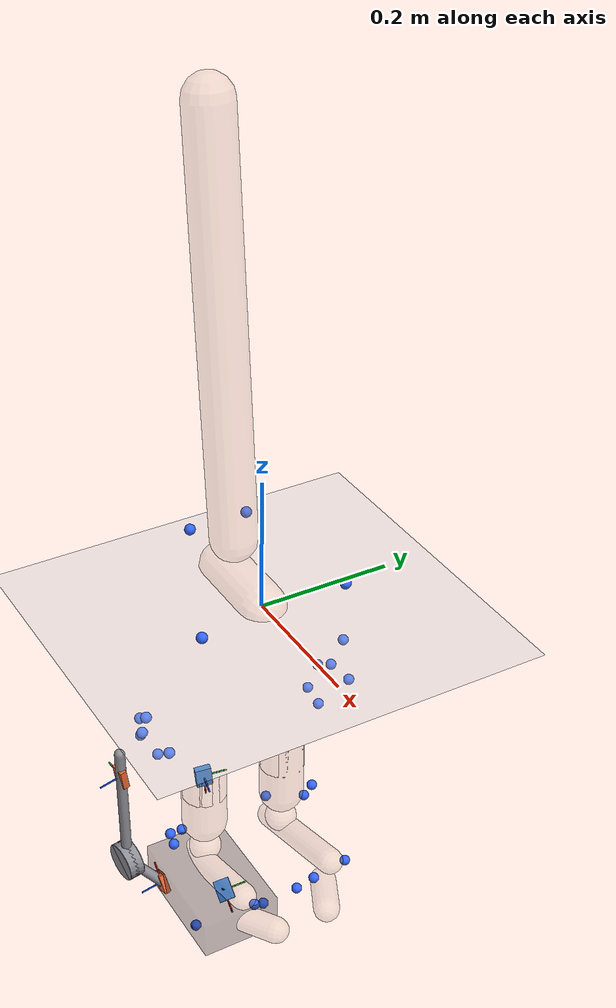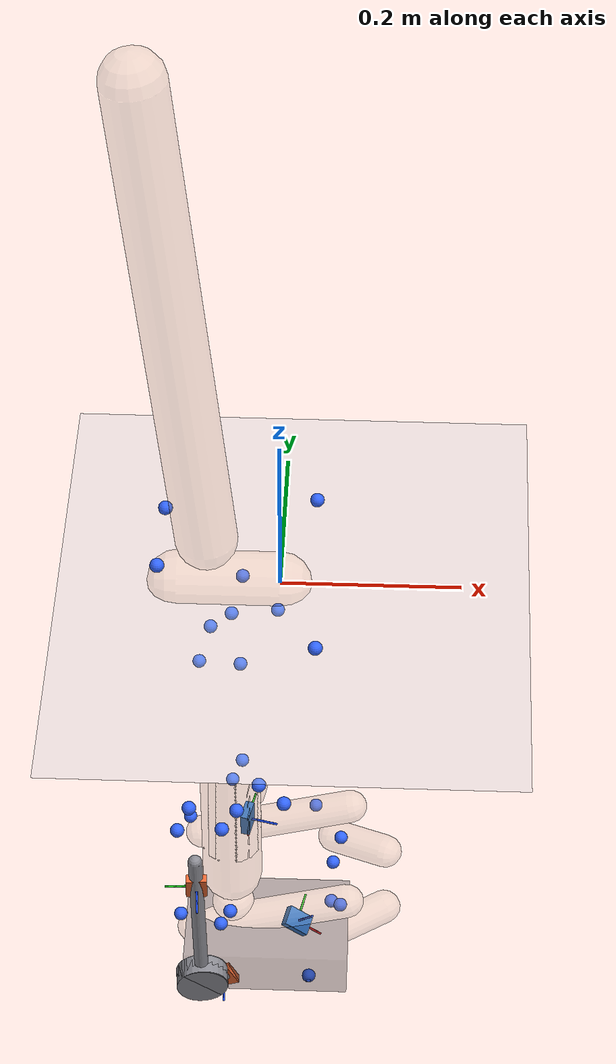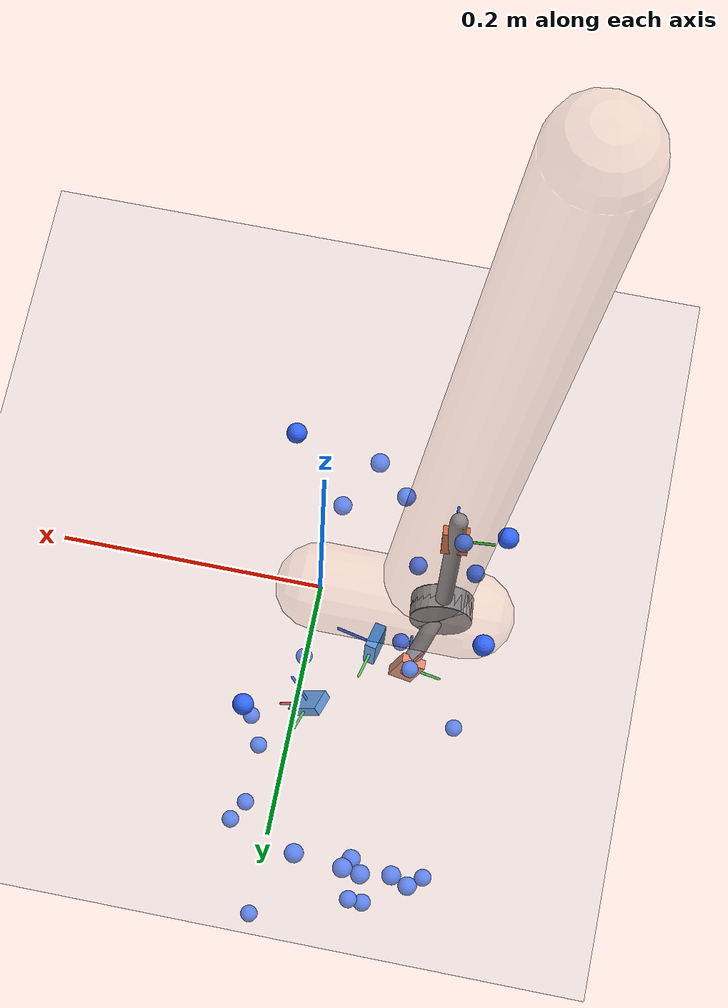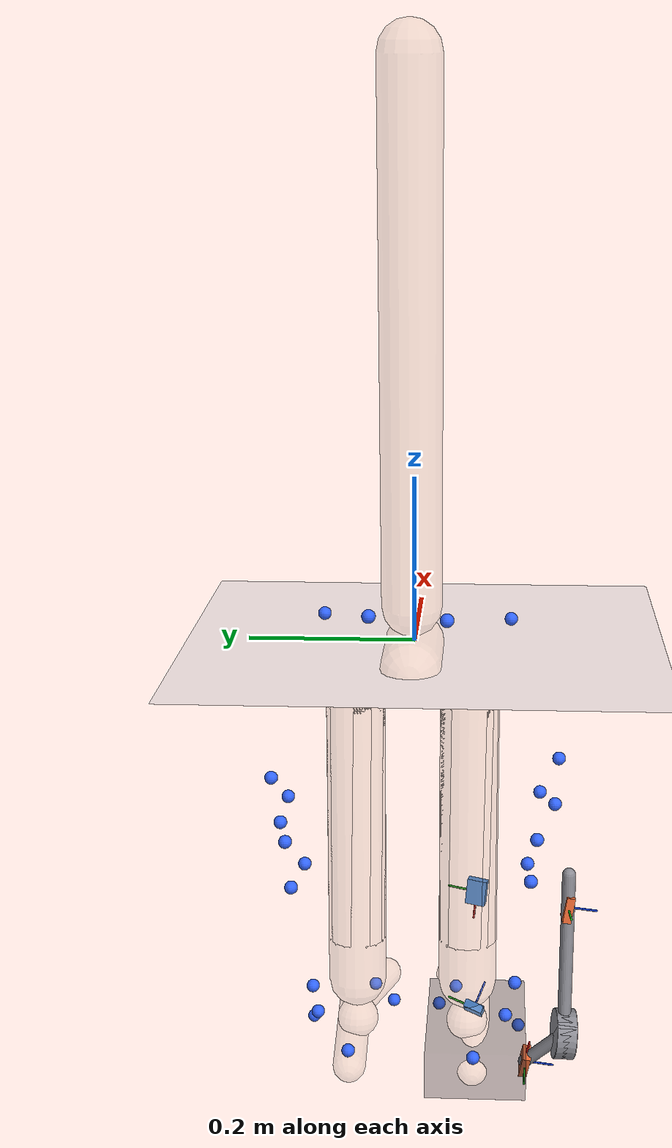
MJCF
<mujoco model="AB25">
  <compiler angle="radian" autolimits="true"/>
  <option timestep="0.005" gravity="0 0 -9.81"><flag contact="disable"/></option>
  <visual><global offwidth="1600" offheight="1200"/>
    <headlight ambient="0.55 0.55 0.55" diffuse="0.6 0.6 0.6"/></visual>
  <default><joint limited="false" damping="0"/><geom contype="0" conaffinity="0"/></default>
  <asset>
    <texture name="grid" type="2d" builtin="checker" rgb1="0.75 0.77 0.8" rgb2="0.85 0.87 0.9" width="512" height="512"/>
    <material name="grid" texture="grid" texrepeat="2 2" texuniform="true"/>
    <material name="skin" rgba="0.85 0.72 0.62 0.28"/>
  </asset>
  <worldbody>
    <light pos="0 0 4" dir="0 0 -1"/>
    <geom name="floor" type="plane" size="0 0 0.05" material="grid"/>
    <body name="pelvis" pos="0 0 0" quat="1 0 0 0">
      <joint name="pelvis_tx" type="slide" axis="1 0 0"/>
      <joint name="pelvis_ty" type="slide" axis="0 0 1"/>
      <joint name="pelvis_tz" type="slide" axis="0 -1 0"/>
      <joint name="pelvis_tilt" type="hinge" axis="0 -1 0"/>
      <joint name="pelvis_list" type="hinge" axis="1 0 0"/>
      <joint name="pelvis_rotation" type="hinge" axis="0 0 1"/>
      <inertial pos="-0.057018595 0 0" mass="8.41204" diaginertia="0.084120373 0.084120373 0.084120373"/>
      <geom type="capsule" fromto="0 0 0 -0.11403719 0 0" size="0.035" material="skin" mass="0"/>
      <site name="m_R_ASIS" pos="0.042614853 -0.11565063 0.016815682" size="0.008" rgba="0.2 0.4 1 1" group="2"/>
      <site name="m_L_ASIS" pos="0.036537914 0.11166799 0.022542233" size="0.008" rgba="0.2 0.4 1 1" group="2"/>
      <site name="m_L_PSIS" pos="-0.12928248 0.046405294 0.066169564" size="0.008" rgba="0.2 0.4 1 1" group="2"/>
      <site name="m_R_PSIS" pos="-0.13249955 -0.04200807 0.063196365" size="0.008" rgba="0.2 0.4 1 1" group="2"/>
      <body name="femur_r" pos="-0.057018595 -0.067341622 -0.053308757" quat="1 0 0 0">
        <joint name="hip_flexion_r" type="hinge" axis="0 -1 0"/>
        <joint name="hip_adduction_r" type="hinge" axis="1 0 0"/>
        <joint name="hip_rotation_r" type="hinge" axis="0 0 1"/>
        <inertial pos="0 0 -0.15331046" mass="6.64377" diaginertia="0.066437737 0.066437737 0.066437737"/>
        <geom type="capsule" fromto="0 0 0 0 0 -0.30662092" size="0.035" material="skin" mass="0"/>
        <site name="m_R_Thigh_Upper" pos="0.039877192 -0.1078605 -0.087309827" size="0.008" rgba="0.2 0.4 1 1" group="2"/>
        <site name="m_R_Thigh_Front" pos="0.066219019 -0.086449809 -0.14124153" size="0.008" rgba="0.2 0.4 1 1" group="2"/>
        <site name="m_R_Thigh_Rear" pos="0.014210524 -0.10327095 -0.13604444" size="0.008" rgba="0.2 0.4 1 1" group="2"/>
        <site name="m_R_Knee_Lat" pos="0.00058716678 -0.058574828 -0.36610361" size="0.008" rgba="0.2 0.4 1 1" group="2"/>
        <body name="tibia_r" pos="0 0 0" quat="1 0 0 0">
<geom name="gt_shank_axis_x" type="capsule" size="0.0012" fromto="0.02000 -0.01050 -0.25450 0.02027 -0.00704 -0.28933" rgba="1 0.1 0.1 1" contype="0" conaffinity="0" mass="0"/>
<geom name="gt_shank_axis_y" type="capsule" size="0.0012" fromto="0.02000 -0.01050 -0.25450 0.02773 0.02346 -0.25107" rgba="0.1 0.8 0.1 1" contype="0" conaffinity="0" mass="0"/>
<geom name="gt_shank_axis_z" type="capsule" size="0.0012" fromto="0.02000 -0.01050 -0.25450 0.05414 -0.01822 -0.25500" rgba="0.1 0.3 1 1" contype="0" conaffinity="0" mass="0"/>
<geom name="exo_shank_axis_x" type="capsule" size="0.0012" fromto="-0.03231 -0.11966 -0.24845 -0.03167 -0.12506 -0.21387" rgba="1 0.1 0.1 1" contype="0" conaffinity="0" mass="0"/>
<geom name="exo_shank_axis_y" type="capsule" size="0.0012" fromto="-0.03231 -0.11966 -0.24845 -0.06719 -0.12256 -0.24825" rgba="0.1 0.8 0.1 1" contype="0" conaffinity="0" mass="0"/>
<geom name="exo_shank_axis_z" type="capsule" size="0.0012" fromto="-0.03231 -0.11966 -0.24845 -0.02949 -0.15412 -0.25388" rgba="0.1 0.3 1 1" contype="0" conaffinity="0" mass="0"/>
<geom name="encoder_shank" type="cylinder" size="0.03 0.012" fromto="-0.02861 -0.13030 -0.41795 -0.03119 -0.10650 -0.41625" rgba="0.55 0.55 0.58 1" contype="0" conaffinity="0" mass="0"/>
<geom name="strut_shank" type="capsule" size="0.008" fromto="-0.02990 -0.11840 -0.41710 -0.03292 -0.11998 -0.20628" rgba="0.55 0.55 0.58 1" contype="0" conaffinity="0" mass="0"/>
          <joint name="knee_r_translation1" type="slide" axis="1 0 0"/>
          <joint name="knee_r_translation2" type="slide" axis="0 0 1"/>
          <joint name="knee_angle_r" type="hinge" axis="0 -1 0"/>
          <inertial pos="0 0 -0.18110796" mass="2.64818" diaginertia="0.02648181 0.02648181 0.02648181"/>
          <geom type="capsule" fromto="0 0 0 0 0 -0.36221593" size="0.035" material="skin" mass="0"/>
          <site name="m_R_Shank_Upper" pos="-0.040971337 -0.081139637 -0.15953262" size="0.008" rgba="0.2 0.4 1 1" group="2"/>
          <site name="m_R_Shank_Front" pos="-0.0054659316 -0.071329649 -0.20556957" size="0.008" rgba="0.2 0.4 1 1" group="2"/>
          <site name="m_R_Shank_Rear" pos="-0.056039005 -0.074445088 -0.20608106" size="0.008" rgba="0.2 0.4 1 1" group="2"/>
          <site name="m_R_Ankle_Lat" pos="-0.011788496 -0.047444483 -0.4034879" size="0.008" rgba="0.2 0.4 1 1" group="2"/>
          <site name="gt_shank_imu" type="box" size="0.016 0.012 0.005" pos="0.02 -0.0105 -0.2545" quat="0.70067015 0.11369956 0.70301913 -0.043564434" rgba="0.16 0.47 0.84 1" group="1"/>
          <site name="exo_shank_imu" type="box" size="0.016 0.012 0.005" pos="-0.032314 -0.119664 -0.248446" quat="0.44174391 0.56037788 -0.51337998 0.47673886" rgba="0.92 0.41 0.20 1" group="1"/>
          <body name="talus_r" pos="0 0 -0.41712065" quat="1 0 0 0">
            <joint name="ankle_angle_r" type="hinge" axis="-0.10501355 -0.97912632 -0.17402245"/>
            <inertial pos="0 0 0" mass="0.0714277" diaginertia="0.00071427675 0.00071427675 0.00071427675"/>
            <geom type="sphere" size="0.025" material="skin" mass="0"/>
            <body name="calcn_r" pos="-0.047309242 -0.0076827803 -0.040693514" quat="1 0 0 0">
<geom name="gt_foot_axis_x" type="capsule" size="0.0012" fromto="0.12410 -0.00050 0.01530 0.15207 -0.00176 -0.00570" rgba="1 0.1 0.1 1" contype="0" conaffinity="0" mass="0"/>
<geom name="gt_foot_axis_y" type="capsule" size="0.0012" fromto="0.12410 -0.00050 0.01530 0.13305 0.03183 0.02528" rgba="0.1 0.8 0.1 1" contype="0" conaffinity="0" mass="0"/>
<geom name="gt_foot_axis_z" type="capsule" size="0.0012" fromto="0.12410 -0.00050 0.01530 0.14314 -0.01385 0.04146" rgba="0.1 0.3 1 1" contype="0" conaffinity="0" mass="0"/>
<geom name="exo_foot_axis_x" type="capsule" size="0.0012" fromto="0.04000 -0.06448 -0.01043 0.02738 -0.06983 0.02178" rgba="1 0.1 0.1 1" contype="0" conaffinity="0" mass="0"/>
<geom name="exo_foot_axis_y" type="capsule" size="0.0012" fromto="0.04000 -0.06448 -0.01043 0.00737 -0.06369 -0.02308" rgba="0.1 0.8 0.1 1" contype="0" conaffinity="0" mass="0"/>
<geom name="exo_foot_axis_z" type="capsule" size="0.0012" fromto="0.04000 -0.06448 -0.01043 0.04120 -0.09906 -0.01570" rgba="0.1 0.3 1 1" contype="0" conaffinity="0" mass="0"/>
<geom name="encoder_foot" type="cylinder" size="0.03 0.012" fromto="0.01843 -0.12260 0.03958 0.01637 -0.09880 0.04182" rgba="0.55 0.55 0.58 1" contype="0" conaffinity="0" mass="0"/>
<geom name="strut_foot" type="capsule" size="0.008" fromto="0.01740 -0.11070 0.04070 0.04000 -0.06448 -0.01043" rgba="0.55 0.55 0.58 1" contype="0" conaffinity="0" mass="0"/>
<geom name="shoe" type="box" pos="0.08835 -0.00363 -0.00635" size="0.09684 0.06154 0.03000" rgba="0.15 0.15 0.18 0.35" contype="0" conaffinity="0" mass="0"/>
              <joint name="subtalar_angle_r" type="hinge" axis="0.78717961 0.12094949 0.60474746"/>
              <inertial pos="0.091772423 0 0.027531727" mass="0.892846" diaginertia="0.0089284594 0.0089284594 0.0089284594"/>
              <geom type="capsule" fromto="0 0 0 0.18354485 0 0.055063454" size="0.02" material="skin" mass="0"/>
              <site name="m_R_Heel" pos="-0.015491373 -0.0010437046 0.0235783" size="0.008" rgba="0.2 0.4 1 1" group="2"/>
              <site name="m_R_Toe_Lat" pos="0.14030319 -0.057755739 -0.016350483" size="0.008" rgba="0.2 0.4 1 1" group="2"/>
              <site name="m_R_Toe_Med" pos="0.16368066 0.045314489 -0.00038220591" size="0.008" rgba="0.2 0.4 1 1" group="2"/>
              <site name="m_R_Toe_Tip" pos="0.17519241 0.023792102 0.018808556" size="0.008" rgba="0.2 0.4 1 1" group="2"/>
              <site name="gt_foot_imu" type="box" size="0.016 0.012 0.005" pos="0.1241 -0.0005 0.0153" quat="0.9314395 0.17891581 0.30704976 -0.078294524" rgba="0.16 0.47 0.84 1" group="1"/>
              <site name="exo_foot_imu" type="box" size="0.016 0.012 0.005" pos="0.039996 -0.06448 -0.010428" quat="-0.35759076 -0.43800523 0.61925745 -0.54479398" rgba="0.92 0.41 0.20 1" group="1"/>
              <body name="toes_r" pos="0.16408909 -0.00099114217 -0.0018354485" quat="1 0 0 0">
                <joint name="mtp_angle_r" type="hinge" axis="-0.5809544 -0.81393611 0"/>
                <inertial pos="0.031753258 0.016060174 0.0055063454" mass="0.154712" diaginertia="0.0015471234 0.0015471234 0.0015471234"/>
                <geom type="capsule" fromto="0 0 0 0.063506517 0.032120348 0.011012691" size="0.02" material="skin" mass="0"/>
              </body>
            </body>
          </body>
        </body>
      </body>
      <body name="femur_l" pos="-0.057018595 0.067341622 -0.053308757" quat="1 0 0 0">
        <joint name="hip_flexion_l" type="hinge" axis="0 -1 0"/>
        <joint name="hip_adduction_l" type="hinge" axis="-1 0 0"/>
        <joint name="hip_rotation_l" type="hinge" axis="0 0 -1"/>
        <inertial pos="0 0 -0.15331046" mass="6.64377" diaginertia="0.066437737 0.066437737 0.066437737"/>
        <geom type="capsule" fromto="0 0 0 0 0 -0.30662092" size="0.035" material="skin" mass="0"/>
        <site name="m_L_Thigh_Upper" pos="0.0031947813 0.10258205 -0.10478482" size="0.008" rgba="0.2 0.4 1 1" group="2"/>
        <site name="m_L_Thigh_Front" pos="0.045402399 0.087521848 -0.14492707" size="0.008" rgba="0.2 0.4 1 1" group="2"/>
        <site name="m_L_Thigh_Rear" pos="-0.010253606 0.090835914 -0.1561543" size="0.008" rgba="0.2 0.4 1 1" group="2"/>
        <site name="m_L_Knee_Lat" pos="0.00121921 0.055426436 -0.37692024" size="0.008" rgba="0.2 0.4 1 1" group="2"/>
        <body name="tibia_l" pos="0 0 0" quat="1 0 0 0">
          <joint name="knee_l_translation1" type="slide" axis="1 0 0"/>
          <joint name="knee_l_translation2" type="slide" axis="0 0 1"/>
          <joint name="knee_angle_l" type="hinge" axis="0 -1 0"/>
          <inertial pos="0 0 -0.18110796" mass="2.64818" diaginertia="0.02648181 0.02648181 0.02648181"/>
          <geom type="capsule" fromto="0 0 0 0 0 -0.36221593" size="0.035" material="skin" mass="0"/>
          <site name="m_L_Shank_Upper" pos="-0.035235741 0.082602125 -0.17088482" size="0.008" rgba="0.2 0.4 1 1" group="2"/>
          <site name="m_L_Shank_Front" pos="0.00090423794 0.06340874 -0.21407627" size="0.008" rgba="0.2 0.4 1 1" group="2"/>
          <site name="m_L_Shank_Rear" pos="-0.049454846 0.074651704 -0.2228283" size="0.008" rgba="0.2 0.4 1 1" group="2"/>
          <site name="m_L_Ankle_Lat" pos="-0.010867541 0.048528527 -0.40527769" size="0.008" rgba="0.2 0.4 1 1" group="2"/>
          <body name="talus_l" pos="0 0 -0.41712065" quat="1 0 0 0">
            <joint name="ankle_angle_l" type="hinge" axis="0.10501355 -0.97912632 0.17402245"/>
            <inertial pos="0 0 0" mass="0.0714277" diaginertia="0.00071427675 0.00071427675 0.00071427675"/>
            <geom type="sphere" size="0.025" material="skin" mass="0"/>
            <body name="calcn_l" pos="-0.047309242 0.0076827803 -0.040693514" quat="1 0 0 0">
              <joint name="subtalar_angle_l" type="hinge" axis="-0.78717961 0.12094949 -0.60474746"/>
              <inertial pos="0.091772423 0 0.027531727" mass="0.892846" diaginertia="0.0089284594 0.0089284594 0.0089284594"/>
              <geom type="capsule" fromto="0 0 0 0.18354485 0 0.055063454" size="0.02" material="skin" mass="0"/>
              <site name="m_L_Heel" pos="-0.013674 -0.00015040144 0.028134311" size="0.008" rgba="0.2 0.4 1 1" group="2"/>
              <site name="m_L_Toe_Lat" pos="0.13914255 0.056456848 -0.0091209322" size="0.008" rgba="0.2 0.4 1 1" group="2"/>
              <site name="m_L_Toe_Med" pos="0.16404444 -0.04591508 0.0027814599" size="0.008" rgba="0.2 0.4 1 1" group="2"/>
              <site name="m_L_Toe_Tip" pos="0.17293303 -0.021384012 0.02086945" size="0.008" rgba="0.2 0.4 1 1" group="2"/>
              <body name="toes_l" pos="0.16408909 0.00099114217 -0.0018354485" quat="1 0 0 0">
                <joint name="mtp_angle_l" type="hinge" axis="0.5809544 -0.81393611 0"/>
                <inertial pos="0.031753258 -0.016060174 0.0055063454" mass="0.154712" diaginertia="0.0015471234 0.0015471234 0.0015471234"/>
                <geom type="capsule" fromto="0 0 0 0.063506517 -0.032120348 0.011012691" size="0.02" material="skin" mass="0"/>
              </body>
            </body>
          </body>
        </body>
      </body>
      <body name="torso" pos="-0.08121319 0 0.065728649" quat="1 0 0 0">
        <joint name="lumbar_extension" type="hinge" axis="0 -1 0"/>
        <joint name="lumbar_bending" type="hinge" axis="1 0 0"/>
        <joint name="lumbar_rotation" type="hinge" axis="0 0 1"/>
        <inertial pos="-0.028419356 0 0.30313979" mass="24.4544" diaginertia="0.24454407 0.24454407 0.24454407"/>
        <geom type="capsule" fromto="0 0 0 -0.056838711 0 0.60627958" size="0.035" material="skin" mass="0"/>
      </body>
    </body>
  </worldbody>
  <sensor>
<accelerometer name="gt_foot_imu_acc" site="gt_foot_imu"/>
<gyro name="gt_foot_imu_gyr" site="gt_foot_imu"/>
<accelerometer name="exo_foot_imu_acc" site="exo_foot_imu"/>
<gyro name="exo_foot_imu_gyr" site="exo_foot_imu"/>
<accelerometer name="gt_shank_imu_acc" site="gt_shank_imu"/>
<gyro name="gt_shank_imu_gyr" site="gt_shank_imu"/>
<accelerometer name="exo_shank_imu_acc" site="exo_shank_imu"/>
<gyro name="exo_shank_imu_gyr" site="exo_shank_imu"/>
</sensor>
</mujoco>
